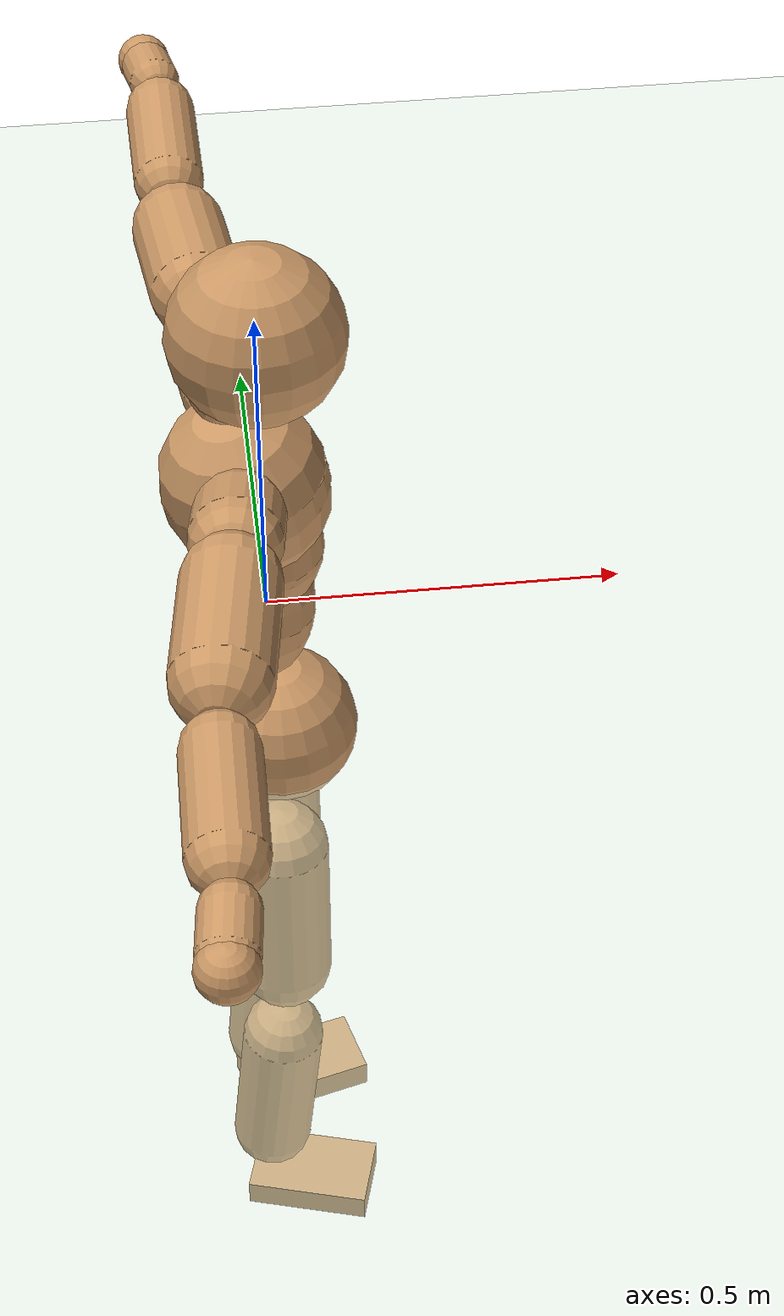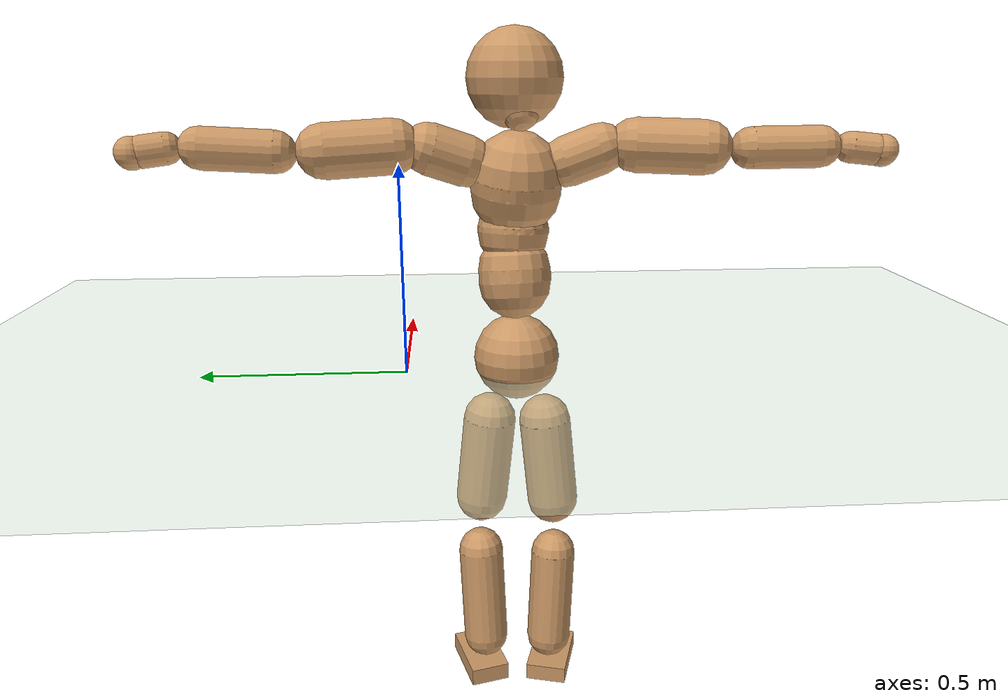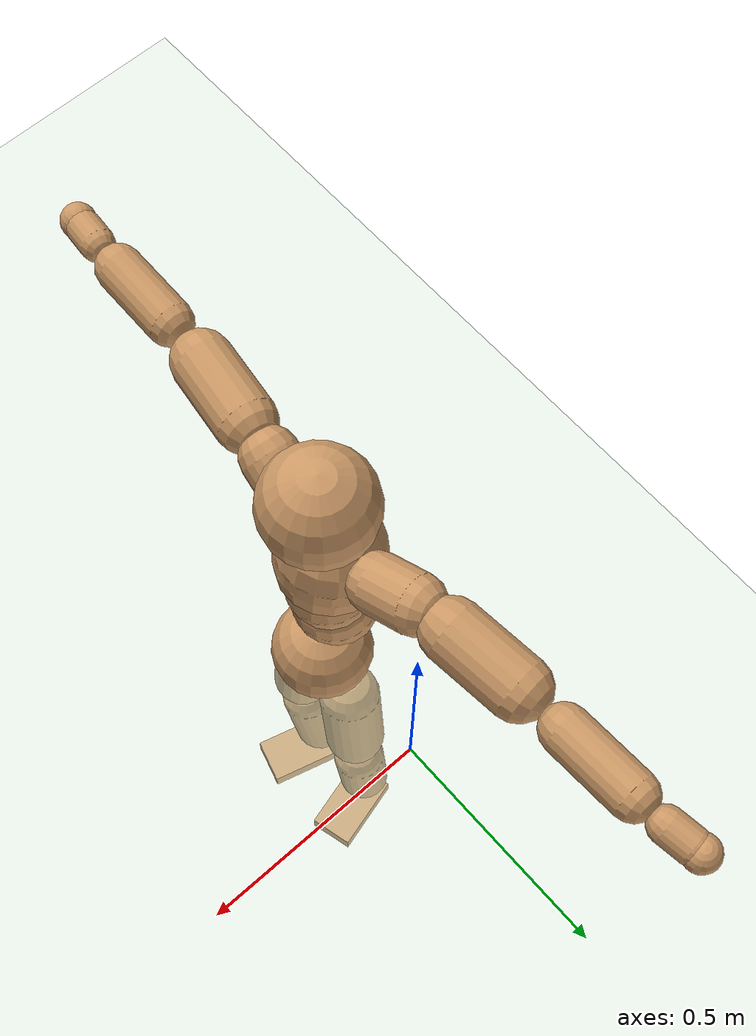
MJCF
<mujoco model="humanoid">
  <compiler coordinate="local"/>
  <default>
    <joint damping="0.0" armature="0.01" stiffness="0.0" limited="true"/>
    <geom conaffinity="1" condim="3" contype="7" margin="0.001" rgba="0.8 0.6 .4 1"/>
  </default>
  <asset>
    <texture type="skybox" builtin="gradient" rgb1=".4 .5 .6" rgb2="0 0 0" width="100" height="100"/>
    <texture builtin="flat" height="1278" mark="cross" markrgb="1 1 1" name="texgeom" random="0.01" rgb1="0.8 0.6 0.4" rgb2="0.8 0.6 0.4" type="cube" width="127"/>
    <texture builtin="checker" height="100" name="texplane" rgb1="0 0 0" rgb2="0.8 0.8 0.8" type="2d" width="100"/>
    <material name="MatPlane" reflectance="0.5" shininess="1" specular="1" texrepeat="60 60" texture="texplane"/>
    <material name="geom" texture="texgeom" texuniform="true"/>
  </asset>
  <worldbody>
    <light cutoff="100" diffuse="1 1 1" dir="-0 0 -1.3" directional="true" exponent="1" pos="0 0 1.3" specular=".1 .1 .1"/>
    <geom conaffinity="1" condim="3" name="floor" pos="0 0 0" rgba="0.8 0.9 0.8 1" size="100 100 .2" type="plane" material="MatPlane"/>
    <body name="Pelvis" pos="-0.0037 -0.2706 0.0376">
      <freejoint name="Pelvis"/>
      <geom type="sphere" contype="1" conaffinity="1" density="500" size="0.1048" pos="0.0000 0.0000 0.0000" name="Pelvis"/>
      <body name="L_Hip" pos="-0.0122 0.0611 -0.0858">
        <joint name="L_Hip_x" type="hinge" pos="0 0 0" axis="1 0 0" stiffness="800" damping="80" armature="0.02" range="-180.0000 180.0000"/>
        <joint name="L_Hip_y" type="hinge" pos="0 0 0" axis="0 1 0" stiffness="800" damping="80" armature="0.02" range="-180.0000 180.0000"/>
        <joint name="L_Hip_z" type="hinge" pos="0 0 0" axis="0 0 1" stiffness="800" damping="80" armature="0.02" range="-180.0000 180.0000"/>
        <geom type="capsule" contype="1" conaffinity="1" density="500" fromto="0.0016 0.0074 -0.0725 0.0065 0.0296 -0.2901" size="0.0647" name="L_Hip"/>
        <body name="L_Knee" pos="0.0081 0.037 -0.3626">
          <joint name="L_Knee_x" type="hinge" pos="0 0 0" axis="1 0 0" stiffness="800" damping="80" armature="0.02" range="-180.0000 180.0000"/>
          <joint name="L_Knee_y" type="hinge" pos="0 0 0" axis="0 1 0" stiffness="800" damping="80" armature="0.02" range="-180.0000 180.0000"/>
          <joint name="L_Knee_z" type="hinge" pos="0 0 0" axis="0 0 1" stiffness="800" damping="80" armature="0.02" range="-180.0000 180.0000"/>
          <geom type="capsule" contype="1" conaffinity="1" density="500" fromto="-0.0081 -0.0032 -0.0817 -0.0324 -0.0130 -0.3267" size="0.0575" name="L_Knee"/>
          <body name="L_Ankle" pos="-0.0405 -0.0162 -0.4084">
            <joint name="L_Ankle_x" type="hinge" pos="0 0 0" axis="1 0 0" stiffness="800" damping="80" armature="0.02" range="-180.0000 180.0000"/>
            <joint name="L_Ankle_y" type="hinge" pos="0 0 0" axis="0 1 0" stiffness="800" damping="80" armature="0.02" range="-180.0000 180.0000"/>
            <joint name="L_Ankle_z" type="hinge" pos="0 0 0" axis="0 0 1" stiffness="800" damping="80" armature="0.02" range="-180.0000 180.0000"/>
            <geom type="box" contype="1" conaffinity="1" density="500" pos="0.0611 0.0160 -0.0290" size="0.0901 0.0508 0.0226" quat="0.9919 0.0000 0.0000 0.1274" name="L_Ankle"/>
            <body name="L_Toe" pos="0.1222 0.0319 -0.0579">
              <joint name="L_Toe_x" type="hinge" pos="0 0 0" axis="1 0 0" stiffness="500" damping="50" armature="0.02" range="-180.0000 180.0000"/>
              <joint name="L_Toe_y" type="hinge" pos="0 0 0" axis="0 1 0" stiffness="500" damping="50" armature="0.02" range="-180.0000 180.0000"/>
              <joint name="L_Toe_z" type="hinge" pos="0 0 0" axis="0 0 1" stiffness="500" damping="50" armature="0.02" range="-180.0000 180.0000"/>
              <geom type="box" contype="1" conaffinity="1" density="500" pos="0.0000 0.0000 0.0285" size="0.001 0.0025 0.0011" quat="0.9911 0.0000 0.0000 0.1329" name="L_Toe"/>
            </body>
          </body>
        </body>
      </body>
      <body name="R_Hip" pos="-0.0072 -0.0632 -0.0944">
        <joint name="R_Hip_x" type="hinge" pos="0 0 0" axis="1 0 0" stiffness="800" damping="80" armature="0.02" range="-180.0000 180.0000"/>
        <joint name="R_Hip_y" type="hinge" pos="0 0 0" axis="0 1 0" stiffness="800" damping="80" armature="0.02" range="-180.0000 180.0000"/>
        <joint name="R_Hip_z" type="hinge" pos="0 0 0" axis="0 0 1" stiffness="800" damping="80" armature="0.02" range="-180.0000 180.0000"/>
        <geom type="capsule" contype="1" conaffinity="1" density="500" fromto="-0.0008 -0.0074 -0.0731 -0.0031 -0.0297 -0.2925" size="0.0644" name="R_Hip"/>
        <body name="R_Knee" pos="-0.0038 -0.0371 -0.3657">
          <joint name="R_Knee_x" type="hinge" pos="0 0 0" axis="1 0 0" stiffness="800" damping="80" armature="0.02" range="-180.0000 180.0000"/>
          <joint name="R_Knee_y" type="hinge" pos="0 0 0" axis="0 1 0" stiffness="800" damping="80" armature="0.02" range="-180.0000 180.0000"/>
          <joint name="R_Knee_z" type="hinge" pos="0 0 0" axis="0 0 1" stiffness="800" damping="80" armature="0.02" range="-180.0000 180.0000"/>
          <geom type="capsule" contype="1" conaffinity="1" density="500" fromto="-0.0073 0.0040 -0.0807 -0.0293 0.0161 -0.3228" size="0.0571" name="R_Knee"/>
          <body name="R_Ankle" pos="-0.0366 0.0201 -0.4035">
            <joint name="R_Ankle_x" type="hinge" pos="0 0 0" axis="1 0 0" stiffness="800" damping="80" armature="0.02" range="-180.0000 180.0000"/>
            <joint name="R_Ankle_y" type="hinge" pos="0 0 0" axis="0 1 0" stiffness="800" damping="80" armature="0.02" range="-180.0000 180.0000"/>
            <joint name="R_Ankle_z" type="hinge" pos="0 0 0" axis="0 0 1" stiffness="800" damping="80" armature="0.02" range="-180.0000 180.0000"/>
            <geom type="box" contype="1" conaffinity="1" density="500" pos="0.0644 -0.0183 -0.0299" size="0.0886 0.0527 0.0219" quat="0.9904 0.0000 0.0000 -0.1380" name="R_Ankle"/>
            <body name="R_Toe" pos="0.1288 -0.0366 -0.0597">
              <joint name="R_Toe_x" type="hinge" pos="0 0 0" axis="1 0 0" stiffness="500" damping="50" armature="0.02" range="-180.0000 180.0000"/>
              <joint name="R_Toe_y" type="hinge" pos="0 0 0" axis="0 1 0" stiffness="500" damping="50" armature="0.02" range="-180.0000 180.0000"/>
              <joint name="R_Toe_z" type="hinge" pos="0 0 0" axis="0 0 1" stiffness="500" damping="50" armature="0.02" range="-180.0000 180.0000"/>
              <geom type="box" contype="1" conaffinity="1" density="500" pos="0.0000 0.0000 0.0298" size="0.0012 0.0026 0.0011" quat="0.9916 0.0000 0.0000 -0.1290" name="R_Toe"/>
            </body>
          </body>
        </body>
      </body>
      <body name="Torso" pos="-0.0467 0.0044 0.1339">
        <joint name="Torso_x" type="hinge" pos="0 0 0" axis="1 0 0" stiffness="1000" damping="100" armature="0.02" range="-180.0000 180.0000"/>
        <joint name="Torso_y" type="hinge" pos="0 0 0" axis="0 1 0" stiffness="1000" damping="100" armature="0.02" range="-180.0000 180.0000"/>
        <joint name="Torso_z" type="hinge" pos="0 0 0" axis="0 0 1" stiffness="1000" damping="100" armature="0.02" range="-180.0000 180.0000"/>
        <geom type="capsule" contype="1" conaffinity="1" density="500" fromto="0.0163 0.0036 0.0909 0.0109 0.0024 0.0606" size="0.085653" name="Torso"/>
        <body name="Spine" pos="0.0272 0.006 0.1515">
          <joint name="Spine_x" type="hinge" pos="0 0 0" axis="1 0 0" stiffness="1000" damping="100" armature="0.02" range="-180.0000 180.0000"/>
          <joint name="Spine_y" type="hinge" pos="0 0 0" axis="0 1 0" stiffness="1000" damping="100" armature="0.02" range="-180.0000 180.0000"/>
          <joint name="Spine_z" type="hinge" pos="0 0 0" axis="0 0 1" stiffness="1000" damping="100" armature="0.02" range="-180.0000 180.0000"/>
          <geom type="capsule" contype="1" conaffinity="1" density="500" fromto="0.0035 -0.0012 0.0368 0.0024 -0.0008 0.0245" size="0.083793" name="Spine"/>
          <body name="Chest" pos="0.0059 -0.0019 0.0613">
            <joint name="Chest_x" type="hinge" pos="0 0 0" axis="1 0 0" stiffness="1000" damping="100" armature="0.02" range="-180.0000 180.0000"/>
            <joint name="Chest_y" type="hinge" pos="0 0 0" axis="0 1 0" stiffness="1000" damping="100" armature="0.02" range="-180.0000 180.0000"/>
            <joint name="Chest_z" type="hinge" pos="0 0 0" axis="0 0 1" stiffness="1000" damping="100" armature="0.02" range="-180.0000 180.0000"/>
            <geom type="capsule" contype="1" conaffinity="1" density="500" fromto="-0.0179 -0.0051 0.0911 -0.0120 -0.0034 0.0607" size="0.104904" name="Chest"/>
            <body name="Neck" pos="-0.0441 -0.014 0.2205">
              <joint name="Neck_x" type="hinge" pos="0 0 0" axis="1 0 0" stiffness="500" damping="50" armature="0.02" range="-180.0000 180.0000"/>
              <joint name="Neck_y" type="hinge" pos="0 0 0" axis="0 1 0" stiffness="500" damping="50" armature="0.02" range="-180.0000 180.0000"/>
              <joint name="Neck_z" type="hinge" pos="0 0 0" axis="0 0 1" stiffness="500" damping="50" armature="0.02" range="-180.0000 180.0000"/>
              <geom type="capsule" contype="1" conaffinity="1" density="500" fromto="0.0101 0.0021 0.0169 0.0405 0.0084 0.0675" size="0.045198" name="Neck"/>
              <body name="Head" pos="0.0506 0.0105 0.0843">
                <joint name="Head_x" type="hinge" pos="0 0 0" axis="1 0 0" stiffness="500" damping="50" armature="0.02" range="-180.0000 180.0000"/>
                <joint name="Head_y" type="hinge" pos="0 0 0" axis="0 1 0" stiffness="500" damping="50" armature="0.02" range="-180.0000 180.0000"/>
                <joint name="Head_z" type="hinge" pos="0 0 0" axis="0 0 1" stiffness="500" damping="50" armature="0.02" range="-180.0000 180.0000"/>
                <geom type="sphere" contype="1" conaffinity="1" density="500" size="0.1102" pos="0.0000 0.0000 0.0000" name="Head"/>
              </body>
            </body>
            <body name="L_Thorax" pos="-0.0196 0.0817 0.1189">
              <joint name="L_Thorax_x" type="hinge" pos="0 0 0" axis="1 0 0" stiffness="500" damping="50" armature="0.02" range="-180.0000 180.0000"/>
              <joint name="L_Thorax_y" type="hinge" pos="0 0 0" axis="0 1 0" stiffness="500" damping="50" armature="0.02" range="-180.0000 180.0000"/>
              <joint name="L_Thorax_z" type="hinge" pos="0 0 0" axis="0 0 1" stiffness="500" damping="50" armature="0.02" range="-180.0000 180.0000"/>
              <geom type="capsule" contype="1" conaffinity="1" density="500" fromto="-0.0053 0.0275 0.0094 -0.0211 0.1101 0.0375" size="0.0583" name="L_Thorax"/>
              <body name="L_Shoulder" pos="-0.0264 0.1377 0.0469">
                <joint name="L_Shoulder_x" type="hinge" pos="0 0 0" axis="1 0 0" stiffness="500" damping="50" armature="0.02" range="-720.0000 720.0000"/>
                <joint name="L_Shoulder_y" type="hinge" pos="0 0 0" axis="0 1 0" stiffness="500" damping="50" armature="0.02" range="-720.0000 720.0000"/>
                <joint name="L_Shoulder_z" type="hinge" pos="0 0 0" axis="0 0 1" stiffness="500" damping="50" armature="0.02" range="-720.0000 720.0000"/>
                <geom type="capsule" contype="1" conaffinity="1" density="500" fromto="-0.0055 0.0496 -0.0028 -0.0219 0.1984 -0.0110" size="0.0612" name="L_Shoulder"/>
                <body name="L_Elbow" pos="-0.0274 0.2479 -0.0138">
                  <joint name="L_Elbow_x" type="hinge" pos="0 0 0" axis="1 0 0" stiffness="500" damping="50" armature="0.02" range="-720.0000 720.0000"/>
                  <joint name="L_Elbow_y" type="hinge" pos="0 0 0" axis="0 1 0" stiffness="500" damping="50" armature="0.02" range="-720.0000 720.0000"/>
                  <joint name="L_Elbow_z" type="hinge" pos="0 0 0" axis="0 0 1" stiffness="500" damping="50" armature="0.02" range="-720.0000 720.0000"/>
                  <geom type="capsule" contype="1" conaffinity="1" density="500" fromto="-0.0010 0.0523 0.0029 -0.0039 0.2093 0.0116" size="0.0466" name="L_Elbow"/>
                  <body name="L_Wrist" pos="-0.0049 0.2616 0.0145">
                    <joint name="L_Wrist_x" type="hinge" pos="0 0 0" axis="1 0 0" stiffness="300" damping="30" armature="0.02" range="-180.0000 180.0000"/>
                    <joint name="L_Wrist_y" type="hinge" pos="0 0 0" axis="0 1 0" stiffness="300" damping="30" armature="0.02" range="-180.0000 180.0000"/>
                    <joint name="L_Wrist_z" type="hinge" pos="0 0 0" axis="0 0 1" stiffness="300" damping="30" armature="0.02" range="-180.0000 180.0000"/>
                    <geom type="capsule" contype="1" conaffinity="1" density="500" fromto="-0.0030 0.0173 -0.0022 -0.0120 0.0690 -0.0086" size="0.0348" name="L_Wrist"/>
                    <body name="L_Hand" pos="-0.0151 0.0863 -0.0108">
                      <joint name="L_Hand_x" type="hinge" pos="0 0 0" axis="1 0 0" stiffness="300" damping="30" armature="0.02" range="-180.0000 180.0000"/>
                      <joint name="L_Hand_y" type="hinge" pos="0 0 0" axis="0 1 0" stiffness="300" damping="30" armature="0.02" range="-180.0000 180.0000"/>
                      <joint name="L_Hand_z" type="hinge" pos="0 0 0" axis="0 0 1" stiffness="300" damping="30" armature="0.02" range="-180.0000 180.0000"/>
                      <geom type="sphere" contype="1" conaffinity="1" density="500" size="0.0357" pos="0.0000 0.0000 0.0000" name="L_Hand"/>
                    </body>
                  </body>
                </body>
              </body>
            </body>
            <body name="R_Thorax" pos="-0.026 -0.0933 0.1161">
              <joint name="R_Thorax_x" type="hinge" pos="0 0 0" axis="1 0 0" stiffness="500" damping="50" armature="0.02" range="-180.0000 180.0000"/>
              <joint name="R_Thorax_y" type="hinge" pos="0 0 0" axis="0 1 0" stiffness="500" damping="50" armature="0.02" range="-180.0000 180.0000"/>
              <joint name="R_Thorax_z" type="hinge" pos="0 0 0" axis="0 0 1" stiffness="500" damping="50" armature="0.02" range="-180.0000 180.0000"/>
              <geom type="capsule" contype="1" conaffinity="1" density="500" fromto="-0.0029 -0.0252 0.0096 -0.0114 -0.1007 0.0385" size="0.0574" name="R_Thorax"/>
              <body name="R_Shoulder" pos="-0.0143 -0.1258 0.0481">
                <joint name="R_Shoulder_x" type="hinge" pos="0 0 0" axis="1 0 0" stiffness="500" damping="50" armature="0.02" range="-720.0000 720.0000"/>
                <joint name="R_Shoulder_y" type="hinge" pos="0 0 0" axis="0 1 0" stiffness="500" damping="50" armature="0.02" range="-720.0000 720.0000"/>
                <joint name="R_Shoulder_z" type="hinge" pos="0 0 0" axis="0 0 1" stiffness="500" damping="50" armature="0.02" range="-720.0000 720.0000"/>
                <geom type="capsule" contype="1" conaffinity="1" density="500" fromto="-0.0074 -0.0510 -0.0015 -0.0296 -0.2039 -0.0062" size="0.061" name="R_Shoulder"/>
                <body name="R_Elbow" pos="-0.037 -0.2549 -0.0077">
                  <joint name="R_Elbow_x" type="hinge" pos="0 0 0" axis="1 0 0" stiffness="500" damping="50" armature="0.02" range="-720.0000 720.0000"/>
                  <joint name="R_Elbow_y" type="hinge" pos="0 0 0" axis="0 1 0" stiffness="500" damping="50" armature="0.02" range="-720.0000 720.0000"/>
                  <joint name="R_Elbow_z" type="hinge" pos="0 0 0" axis="0 0 1" stiffness="500" damping="50" armature="0.02" range="-720.0000 720.0000"/>
                  <geom type="capsule" contype="1" conaffinity="1" density="500" fromto="-0.0009 -0.0520 0.0007 -0.0035 -0.2079 0.0027" size="0.0468" name="R_Elbow"/>
                  <body name="R_Wrist" pos="-0.0044 -0.2599 0.0033">
                    <joint name="R_Wrist_x" type="hinge" pos="0 0 0" axis="1 0 0" stiffness="300" damping="30" armature="0.02" range="-180.0000 180.0000"/>
                    <joint name="R_Wrist_y" type="hinge" pos="0 0 0" axis="0 1 0" stiffness="300" damping="30" armature="0.02" range="-180.0000 180.0000"/>
                    <joint name="R_Wrist_z" type="hinge" pos="0 0 0" axis="0 0 1" stiffness="300" damping="30" armature="0.02" range="-180.0000 180.0000"/>
                    <geom type="capsule" contype="1" conaffinity="1" density="500" fromto="-0.0019 -0.0176 -0.0018 -0.0078 -0.0705 -0.0070" size="0.0352" name="R_Wrist"/>
                    <body name="R_Hand" pos="-0.0097 -0.0881 -0.0088">
                      <joint name="R_Hand_x" type="hinge" pos="0 0 0" axis="1 0 0" stiffness="300" damping="30" armature="0.02" range="-180.0000 180.0000"/>
                      <joint name="R_Hand_y" type="hinge" pos="0 0 0" axis="0 1 0" stiffness="300" damping="30" armature="0.02" range="-180.0000 180.0000"/>
                      <joint name="R_Hand_z" type="hinge" pos="0 0 0" axis="0 0 1" stiffness="300" damping="30" armature="0.02" range="-180.0000 180.0000"/>
                      <geom type="sphere" contype="1" conaffinity="1" density="500" size="0.0360" pos="0.0000 0.0000 0.0000" name="R_Hand"/>
                    </body>
                  </body>
                </body>
              </body>
            </body>
          </body>
        </body>
      </body>
    </body>
  </worldbody>
  <actuator>
    <motor name="L_Hip_x" joint="L_Hip_x" gear="500"/>
    <motor name="L_Hip_y" joint="L_Hip_y" gear="500"/>
    <motor name="L_Hip_z" joint="L_Hip_z" gear="500"/>
    <motor name="L_Knee_x" joint="L_Knee_x" gear="500"/>
    <motor name="L_Knee_y" joint="L_Knee_y" gear="500"/>
    <motor name="L_Knee_z" joint="L_Knee_z" gear="500"/>
    <motor name="L_Ankle_x" joint="L_Ankle_x" gear="500"/>
    <motor name="L_Ankle_y" joint="L_Ankle_y" gear="500"/>
    <motor name="L_Ankle_z" joint="L_Ankle_z" gear="500"/>
    <motor name="L_Toe_x" joint="L_Toe_x" gear="500"/>
    <motor name="L_Toe_y" joint="L_Toe_y" gear="500"/>
    <motor name="L_Toe_z" joint="L_Toe_z" gear="500"/>
    <motor name="R_Hip_x" joint="R_Hip_x" gear="500"/>
    <motor name="R_Hip_y" joint="R_Hip_y" gear="500"/>
    <motor name="R_Hip_z" joint="R_Hip_z" gear="500"/>
    <motor name="R_Knee_x" joint="R_Knee_x" gear="500"/>
    <motor name="R_Knee_y" joint="R_Knee_y" gear="500"/>
    <motor name="R_Knee_z" joint="R_Knee_z" gear="500"/>
    <motor name="R_Ankle_x" joint="R_Ankle_x" gear="500"/>
    <motor name="R_Ankle_y" joint="R_Ankle_y" gear="500"/>
    <motor name="R_Ankle_z" joint="R_Ankle_z" gear="500"/>
    <motor name="R_Toe_x" joint="R_Toe_x" gear="500"/>
    <motor name="R_Toe_y" joint="R_Toe_y" gear="500"/>
    <motor name="R_Toe_z" joint="R_Toe_z" gear="500"/>
    <motor name="Torso_x" joint="Torso_x" gear="500"/>
    <motor name="Torso_y" joint="Torso_y" gear="500"/>
    <motor name="Torso_z" joint="Torso_z" gear="500"/>
    <motor name="Spine_x" joint="Spine_x" gear="500"/>
    <motor name="Spine_y" joint="Spine_y" gear="500"/>
    <motor name="Spine_z" joint="Spine_z" gear="500"/>
    <motor name="Chest_x" joint="Chest_x" gear="500"/>
    <motor name="Chest_y" joint="Chest_y" gear="500"/>
    <motor name="Chest_z" joint="Chest_z" gear="500"/>
    <motor name="Neck_x" joint="Neck_x" gear="500"/>
    <motor name="Neck_y" joint="Neck_y" gear="500"/>
    <motor name="Neck_z" joint="Neck_z" gear="500"/>
    <motor name="Head_x" joint="Head_x" gear="500"/>
    <motor name="Head_y" joint="Head_y" gear="500"/>
    <motor name="Head_z" joint="Head_z" gear="500"/>
    <motor name="L_Thorax_x" joint="L_Thorax_x" gear="500"/>
    <motor name="L_Thorax_y" joint="L_Thorax_y" gear="500"/>
    <motor name="L_Thorax_z" joint="L_Thorax_z" gear="500"/>
    <motor name="L_Shoulder_x" joint="L_Shoulder_x" gear="500"/>
    <motor name="L_Shoulder_y" joint="L_Shoulder_y" gear="500"/>
    <motor name="L_Shoulder_z" joint="L_Shoulder_z" gear="500"/>
    <motor name="L_Elbow_x" joint="L_Elbow_x" gear="500"/>
    <motor name="L_Elbow_y" joint="L_Elbow_y" gear="500"/>
    <motor name="L_Elbow_z" joint="L_Elbow_z" gear="500"/>
    <motor name="L_Wrist_x" joint="L_Wrist_x" gear="500"/>
    <motor name="L_Wrist_y" joint="L_Wrist_y" gear="500"/>
    <motor name="L_Wrist_z" joint="L_Wrist_z" gear="500"/>
    <motor name="L_Hand_x" joint="L_Hand_x" gear="500"/>
    <motor name="L_Hand_y" joint="L_Hand_y" gear="500"/>
    <motor name="L_Hand_z" joint="L_Hand_z" gear="500"/>
    <motor name="R_Thorax_x" joint="R_Thorax_x" gear="500"/>
    <motor name="R_Thorax_y" joint="R_Thorax_y" gear="500"/>
    <motor name="R_Thorax_z" joint="R_Thorax_z" gear="500"/>
    <motor name="R_Shoulder_x" joint="R_Shoulder_x" gear="500"/>
    <motor name="R_Shoulder_y" joint="R_Shoulder_y" gear="500"/>
    <motor name="R_Shoulder_z" joint="R_Shoulder_z" gear="500"/>
    <motor name="R_Elbow_x" joint="R_Elbow_x" gear="500"/>
    <motor name="R_Elbow_y" joint="R_Elbow_y" gear="500"/>
    <motor name="R_Elbow_z" joint="R_Elbow_z" gear="500"/>
    <motor name="R_Wrist_x" joint="R_Wrist_x" gear="500"/>
    <motor name="R_Wrist_y" joint="R_Wrist_y" gear="500"/>
    <motor name="R_Wrist_z" joint="R_Wrist_z" gear="500"/>
    <motor name="R_Hand_x" joint="R_Hand_x" gear="500"/>
    <motor name="R_Hand_y" joint="R_Hand_y" gear="500"/>
    <motor name="R_Hand_z" joint="R_Hand_z" gear="500"/>
  </actuator>
  <contact>
    <exclude body1="Torso" body2="Chest"/>
    <exclude body1="Head" body2="Chest"/>
    <exclude body1="R_Knee" body2="R_Toe"/>
    <exclude body1="R_Knee" body2="L_Ankle"/>
    <exclude body1="R_Knee" body2="L_Toe"/>
    <exclude body1="L_Knee" body2="L_Toe"/>
    <exclude body1="L_Knee" body2="R_Ankle"/>
    <exclude body1="L_Knee" body2="R_Toe"/>
    <exclude body1="L_Shoulder" body2="Chest"/>
    <exclude body1="R_Shoulder" body2="Chest"/>
  </contact>
  <sensor/>
  <size njmax="700" nconmax="700"/>
</mujoco>
